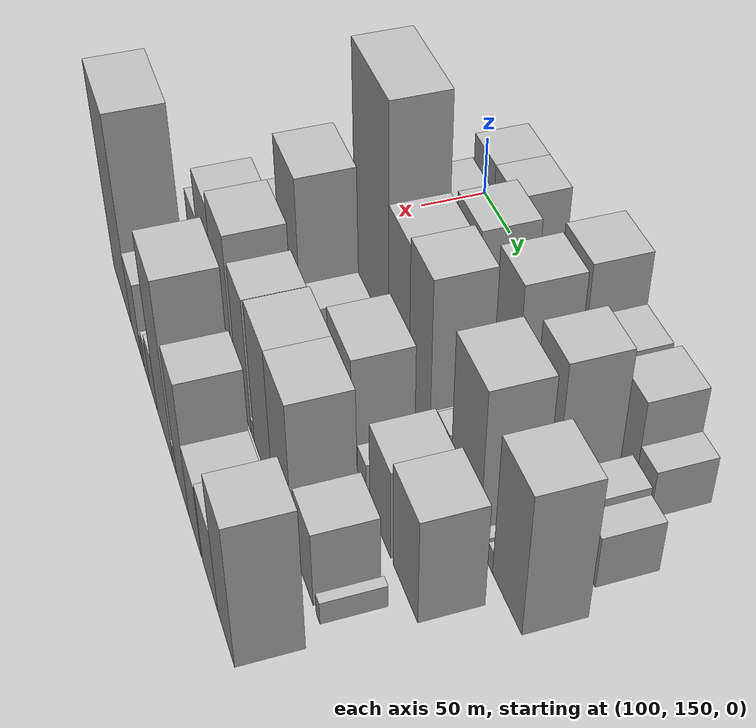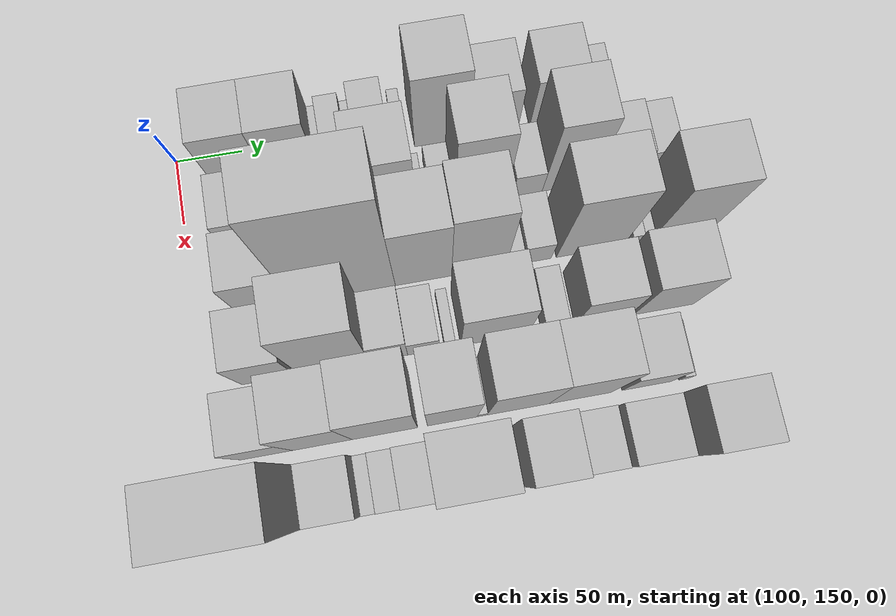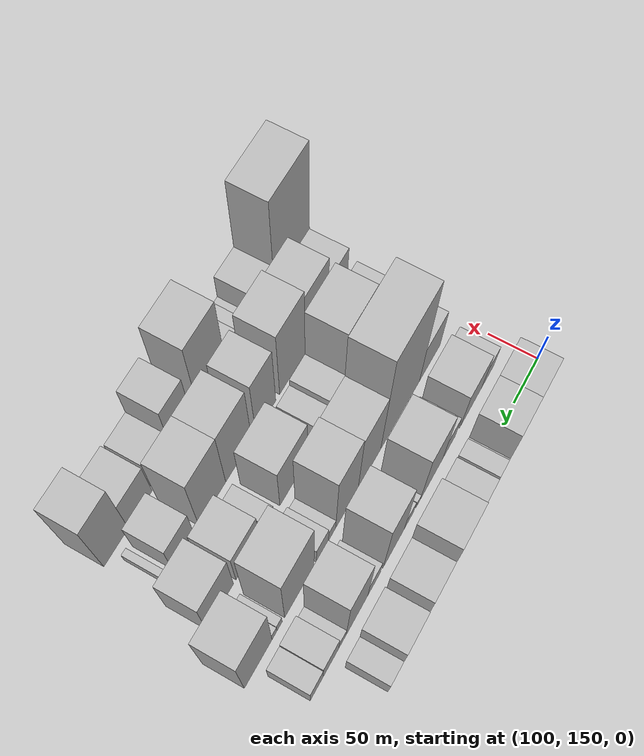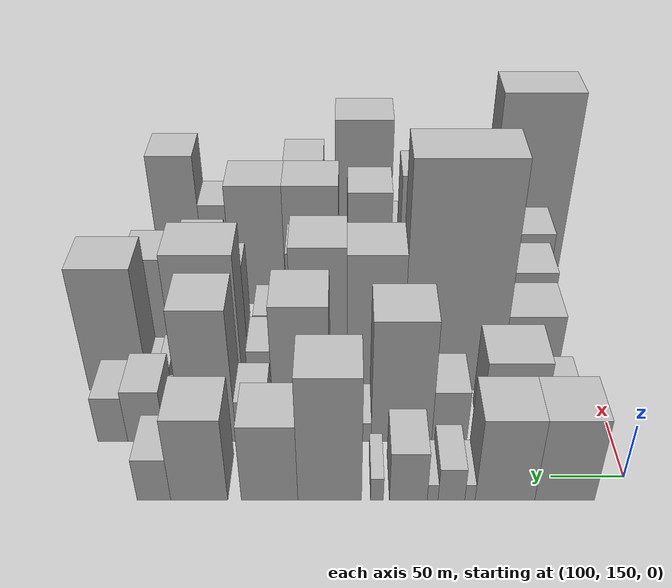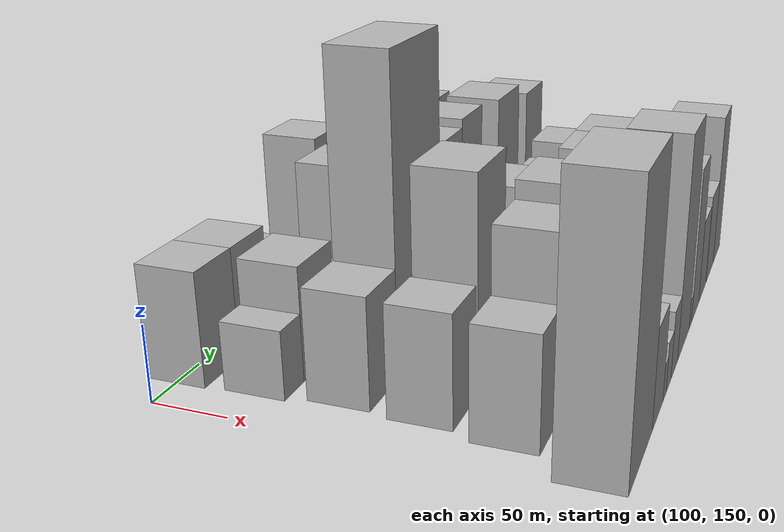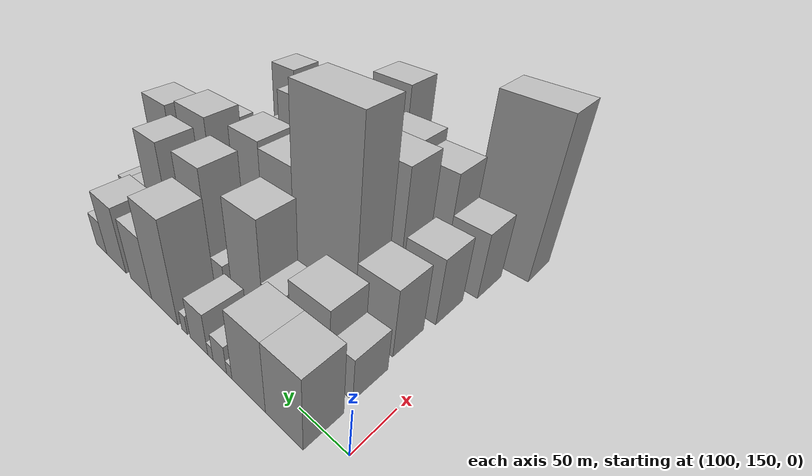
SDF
<sdf version="1.6">
 <world name="default">
  <model name="building_29">
   <static>1</static>
   <pose>100.0000 194.5269 0 0.000000 0.000000 0.000000</pose>
   <link name="link">
    <pose>0 0 37.50 0 0 0</pose>
    <collision name="collision"><geometry><box><size>40.0000 39.7964 75.0000</size></box></geometry></collision>
    <visual name="visual">
     <cast_shadows>0</cast_shadows>
     <geometry><box><size>40.0000 39.7964 75.0000</size></box></geometry>
     <material>
      <script>
       <uri>model://HANNAS_wall/materials/scripts</uri>
       <uri>model://HANNAS_wall/materials/textures</uri>
       <name>vrc/HANNAS_wall</name>
      </script>
     </material>
    </visual>
   </link>
  </model>
  <model name="building_30">
   <static>1</static>
   <pose>100.0000 234.2589 0 0.000000 0.000000 0.000000</pose>
   <link name="link">
    <pose>0 0 37.50 0 0 0</pose>
    <collision name="collision"><geometry><box><size>40.0000 39.6676 75.0000</size></box></geometry></collision>
    <visual name="visual">
     <cast_shadows>0</cast_shadows>
     <geometry><box><size>40.0000 39.6676 75.0000</size></box></geometry>
     <material>
      <script>
       <uri>model://HANNAS_wall/materials/scripts</uri>
       <uri>model://HANNAS_wall/materials/textures</uri>
       <name>vrc/HANNAS_wall</name>
      </script>
     </material>
    </visual>
   </link>
  </model>
  <model name="building_31">
   <static>1</static>
   <pose>100.0000 257.5255 0 0.000000 0.000000 0.000000</pose>
   <link name="link">
    <pose>0 0 7.50 0 0 0</pose>
    <collision name="collision"><geometry><box><size>40.0000 6.8656 15.0000</size></box></geometry></collision>
    <visual name="visual">
     <cast_shadows>0</cast_shadows>
     <geometry><box><size>40.0000 6.8656 15.0000</size></box></geometry>
     <material>
      <script>
       <uri>model://HANNAS_wall/materials/scripts</uri>
       <uri>model://HANNAS_wall/materials/textures</uri>
       <name>vrc/HANNAS_wall</name>
      </script>
     </material>
    </visual>
   </link>
  </model>
  <model name="building_32">
   <static>1</static>
   <pose>100.0000 269.8523 0 0.000000 0.000000 0.000000</pose>
   <link name="link">
    <pose>0 0 15.00 0 0 0</pose>
    <collision name="collision"><geometry><box><size>40.0000 17.7881 30.0000</size></box></geometry></collision>
    <visual name="visual">
     <cast_shadows>0</cast_shadows>
     <geometry><box><size>40.0000 17.7881 30.0000</size></box></geometry>
     <material>
      <script>
       <uri>model://HANNAS_wall/materials/scripts</uri>
       <uri>model://HANNAS_wall/materials/textures</uri>
       <name>vrc/HANNAS_wall</name>
      </script>
     </material>
    </visual>
   </link>
  </model>
  <model name="building_33">
   <static>1</static>
   <pose>100.0000 282.3357 0 0.000000 0.000000 0.000000</pose>
   <link name="link">
    <pose>0 0 7.50 0 0 0</pose>
    <collision name="collision"><geometry><box><size>40.0000 7.1787 15.0000</size></box></geometry></collision>
    <visual name="visual">
     <cast_shadows>0</cast_shadows>
     <geometry><box><size>40.0000 7.1787 15.0000</size></box></geometry>
     <material>
      <script>
       <uri>model://HANNAS_wall/materials/scripts</uri>
       <uri>model://HANNAS_wall/materials/textures</uri>
       <name>vrc/HANNAS_wall</name>
      </script>
     </material>
    </visual>
   </link>
  </model>
  <model name="building_34">
   <static>1</static>
   <pose>100.0000 298.5091 0 0.000000 0.000000 0.000000</pose>
   <link name="link">
    <pose>0 0 22.50 0 0 0</pose>
    <collision name="collision"><geometry><box><size>40.0000 25.1681 45.0000</size></box></geometry></collision>
    <visual name="visual">
     <cast_shadows>0</cast_shadows>
     <geometry><box><size>40.0000 25.1681 45.0000</size></box></geometry>
     <material>
      <script>
       <uri>model://HANNAS_wall/materials/scripts</uri>
       <uri>model://HANNAS_wall/materials/textures</uri>
       <name>vrc/HANNAS_wall</name>
      </script>
     </material>
    </visual>
   </link>
  </model>
  <model name="building_35">
   <static>1</static>
   <pose>100.0000 319.3938 0 0.000000 0.000000 0.000000</pose>
   <link name="link">
    <pose>0 0 10.50 0 0 0</pose>
    <collision name="collision"><geometry><box><size>40.0000 8.6014 21.0000</size></box></geometry></collision>
    <visual name="visual">
     <cast_shadows>0</cast_shadows>
     <geometry><box><size>40.0000 8.6014 21.0000</size></box></geometry>
     <material>
      <script>
       <uri>model://HANNAS_wall/materials/scripts</uri>
       <uri>model://HANNAS_wall/materials/textures</uri>
       <name>vrc/HANNAS_wall</name>
      </script>
     </material>
    </visual>
   </link>
  </model>
  <model name="building_36">
   <static>1</static>
   <pose>100.0000 350.8763 0 0.000000 0.000000 0.000000</pose>
   <link name="link">
    <pose>0 0 55.50 0 0 0</pose>
    <collision name="collision"><geometry><box><size>40.0000 42.3636 111.0000</size></box></geometry></collision>
    <visual name="visual">
     <cast_shadows>0</cast_shadows>
     <geometry><box><size>40.0000 42.3636 111.0000</size></box></geometry>
     <material>
      <script>
       <uri>model://HANNAS_wall/materials/scripts</uri>
       <uri>model://HANNAS_wall/materials/textures</uri>
       <name>vrc/HANNAS_wall</name>
      </script>
     </material>
    </visual>
   </link>
  </model>
  <model name="building_37">
   <static>1</static>
   <pose>100.0000 390.8622 0 0.000000 0.000000 0.000000</pose>
   <link name="link">
    <pose>0 0 34.50 0 0 0</pose>
    <collision name="collision"><geometry><box><size>40.0000 37.6083 69.0000</size></box></geometry></collision>
    <visual name="visual">
     <cast_shadows>0</cast_shadows>
     <geometry><box><size>40.0000 37.6083 69.0000</size></box></geometry>
     <material>
      <script>
       <uri>model://HANNAS_wall/materials/scripts</uri>
       <uri>model://HANNAS_wall/materials/textures</uri>
       <name>vrc/HANNAS_wall</name>
      </script>
     </material>
    </visual>
   </link>
  </model>
  <model name="building_38">
   <static>1</static>
   <pose>100.0000 437.6545 0 0.000000 0.000000 0.000000</pose>
   <link name="link">
    <pose>0 0 37.50 0 0 0</pose>
    <collision name="collision"><geometry><box><size>40.0000 37.9762 75.0000</size></box></geometry></collision>
    <visual name="visual">
     <cast_shadows>0</cast_shadows>
     <geometry><box><size>40.0000 37.9762 75.0000</size></box></geometry>
     <material>
      <script>
       <uri>model://HANNAS_wall/materials/scripts</uri>
       <uri>model://HANNAS_wall/materials/textures</uri>
       <name>vrc/HANNAS_wall</name>
      </script>
     </material>
    </visual>
   </link>
  </model>
  <model name="building_39">
   <static>1</static>
   <pose>100.0000 467.8266 0 0.000000 0.000000 0.000000</pose>
   <link name="link">
    <pose>0 0 19.50 0 0 0</pose>
    <collision name="collision"><geometry><box><size>40.0000 22.3680 39.0000</size></box></geometry></collision>
    <visual name="visual">
     <cast_shadows>0</cast_shadows>
     <geometry><box><size>40.0000 22.3680 39.0000</size></box></geometry>
     <material>
      <script>
       <uri>model://HANNAS_wall/materials/scripts</uri>
       <uri>model://HANNAS_wall/materials/textures</uri>
       <name>vrc/HANNAS_wall</name>
      </script>
     </material>
    </visual>
   </link>
  </model>
  <model name="building_77">
   <static>1</static>
   <pose>152.0000 189.0542 0 0.000000 0.000000 0.000000</pose>
   <link name="link">
    <pose>0 0 22.50 0 0 0</pose>
    <collision name="collision"><geometry><box><size>40.0000 24.2151 45.0000</size></box></geometry></collision>
    <visual name="visual">
     <cast_shadows>0</cast_shadows>
     <geometry><box><size>40.0000 24.2151 45.0000</size></box></geometry>
     <material>
      <script>
       <uri>model://HANNAS_wall/materials/scripts</uri>
       <uri>model://HANNAS_wall/materials/textures</uri>
       <name>vrc/HANNAS_wall</name>
      </script>
     </material>
    </visual>
   </link>
  </model>
  <model name="building_78">
   <static>1</static>
   <pose>152.0000 223.0713 0 0.000000 0.000000 0.000000</pose>
   <link name="link">
    <pose>0 0 37.50 0 0 0</pose>
    <collision name="collision"><geometry><box><size>40.0000 43.8192 75.0000</size></box></geometry></collision>
    <visual name="visual">
     <cast_shadows>0</cast_shadows>
     <geometry><box><size>40.0000 43.8192 75.0000</size></box></geometry>
     <material>
      <script>
       <uri>model://HANNAS_wall/materials/scripts</uri>
       <uri>model://HANNAS_wall/materials/textures</uri>
       <name>vrc/HANNAS_wall</name>
      </script>
     </material>
    </visual>
   </link>
  </model>
  <model name="building_79">
   <static>1</static>
   <pose>152.0000 266.4922 0 0.000000 0.000000 0.000000</pose>
   <link name="link">
    <pose>0 0 24.00 0 0 0</pose>
    <collision name="collision"><geometry><box><size>40.0000 25.0225 48.0000</size></box></geometry></collision>
    <visual name="visual">
     <cast_shadows>0</cast_shadows>
     <geometry><box><size>40.0000 25.0225 48.0000</size></box></geometry>
     <material>
      <script>
       <uri>model://HANNAS_wall/materials/scripts</uri>
       <uri>model://HANNAS_wall/materials/textures</uri>
       <name>vrc/HANNAS_wall</name>
      </script>
     </material>
    </visual>
   </link>
  </model>
  <model name="building_80">
   <static>1</static>
   <pose>152.0000 300.5590 0 0.000000 0.000000 0.000000</pose>
   <link name="link">
    <pose>0 0 55.50 0 0 0</pose>
    <collision name="collision"><geometry><box><size>40.0000 43.1111 111.0000</size></box></geometry></collision>
    <visual name="visual">
     <cast_shadows>0</cast_shadows>
     <geometry><box><size>40.0000 43.1111 111.0000</size></box></geometry>
     <material>
      <script>
       <uri>model://HANNAS_wall/materials/scripts</uri>
       <uri>model://HANNAS_wall/materials/textures</uri>
       <name>vrc/HANNAS_wall</name>
      </script>
     </material>
    </visual>
   </link>
  </model>
  <model name="building_81">
   <static>1</static>
   <pose>152.0000 325.9532 0 0.000000 0.000000 0.000000</pose>
   <link name="link">
    <pose>0 0 9.00 0 0 0</pose>
    <collision name="collision"><geometry><box><size>40.0000 7.6775 18.0000</size></box></geometry></collision>
    <visual name="visual">
     <cast_shadows>0</cast_shadows>
     <geometry><box><size>40.0000 7.6775 18.0000</size></box></geometry>
     <material>
      <script>
       <uri>model://HANNAS_wall/materials/scripts</uri>
       <uri>model://HANNAS_wall/materials/textures</uri>
       <name>vrc/HANNAS_wall</name>
      </script>
     </material>
    </visual>
   </link>
  </model>
  <model name="building_82">
   <static>1</static>
   <pose>152.0000 342.5700 0 0.000000 0.000000 0.000000</pose>
   <link name="link">
    <pose>0 0 15.00 0 0 0</pose>
    <collision name="collision"><geometry><box><size>40.0000 17.5560 30.0000</size></box></geometry></collision>
    <visual name="visual">
     <cast_shadows>0</cast_shadows>
     <geometry><box><size>40.0000 17.5560 30.0000</size></box></geometry>
     <material>
      <script>
       <uri>model://HANNAS_wall/materials/scripts</uri>
       <uri>model://HANNAS_wall/materials/textures</uri>
       <name>vrc/HANNAS_wall</name>
      </script>
     </material>
    </visual>
   </link>
  </model>
  <model name="building_83">
   <static>1</static>
   <pose>152.0000 370.8401 0 0.000000 0.000000 0.000000</pose>
   <link name="link">
    <pose>0 0 61.50 0 0 0</pose>
    <collision name="collision"><geometry><box><size>40.0000 38.9843 123.0000</size></box></geometry></collision>
    <visual name="visual">
     <cast_shadows>0</cast_shadows>
     <geometry><box><size>40.0000 38.9843 123.0000</size></box></geometry>
     <material>
      <script>
       <uri>model://HANNAS_wall/materials/scripts</uri>
       <uri>model://HANNAS_wall/materials/textures</uri>
       <name>vrc/HANNAS_wall</name>
      </script>
     </material>
    </visual>
   </link>
  </model>
  <model name="building_84">
   <static>1</static>
   <pose>152.0000 406.5475 0 0.000000 0.000000 0.000000</pose>
   <link name="link">
    <pose>0 0 19.50 0 0 0</pose>
    <collision name="collision"><geometry><box><size>40.0000 22.4305 39.0000</size></box></geometry></collision>
    <visual name="visual">
     <cast_shadows>0</cast_shadows>
     <geometry><box><size>40.0000 22.4305 39.0000</size></box></geometry>
     <material>
      <script>
       <uri>model://HANNAS_wall/materials/scripts</uri>
       <uri>model://HANNAS_wall/materials/textures</uri>
       <name>vrc/HANNAS_wall</name>
      </script>
     </material>
    </visual>
   </link>
  </model>
  <model name="building_85">
   <static>1</static>
   <pose>152.0000 436.7670 0 0.000000 0.000000 0.000000</pose>
   <link name="link">
    <pose>0 0 60.00 0 0 0</pose>
    <collision name="collision"><geometry><box><size>40.0000 38.0085 120.0000</size></box></geometry></collision>
    <visual name="visual">
     <cast_shadows>0</cast_shadows>
     <geometry><box><size>40.0000 38.0085 120.0000</size></box></geometry>
     <material>
      <script>
       <uri>model://HANNAS_wall/materials/scripts</uri>
       <uri>model://HANNAS_wall/materials/textures</uri>
       <name>vrc/HANNAS_wall</name>
      </script>
     </material>
    </visual>
   </link>
  </model>
  <model name="building_86">
   <static>1</static>
   <pose>152.0000 462.1711 0 0.000000 0.000000 0.000000</pose>
   <link name="link">
    <pose>0 0 13.50 0 0 0</pose>
    <collision name="collision"><geometry><box><size>40.0000 12.7997 27.0000</size></box></geometry></collision>
    <visual name="visual">
     <cast_shadows>0</cast_shadows>
     <geometry><box><size>40.0000 12.7997 27.0000</size></box></geometry>
     <material>
      <script>
       <uri>model://HANNAS_wall/materials/scripts</uri>
       <uri>model://HANNAS_wall/materials/textures</uri>
       <name>vrc/HANNAS_wall</name>
      </script>
     </material>
    </visual>
   </link>
  </model>
  <model name="building_87">
   <static>1</static>
   <pose>152.0000 481.8866 0 0.000000 0.000000 0.000000</pose>
   <link name="link">
    <pose>0 0 24.00 0 0 0</pose>
    <collision name="collision"><geometry><box><size>40.0000 26.6314 48.0000</size></box></geometry></collision>
    <visual name="visual">
     <cast_shadows>0</cast_shadows>
     <geometry><box><size>40.0000 26.6314 48.0000</size></box></geometry>
     <material>
      <script>
       <uri>model://HANNAS_wall/materials/scripts</uri>
       <uri>model://HANNAS_wall/materials/textures</uri>
       <name>vrc/HANNAS_wall</name>
      </script>
     </material>
    </visual>
   </link>
  </model>
  <model name="building_88">
   <static>1</static>
   <pose>152.0000 505.8648 0 0.000000 0.000000 0.000000</pose>
   <link name="link">
    <pose>0 0 21.00 0 0 0</pose>
    <collision name="collision"><geometry><box><size>40.0000 21.3251 42.0000</size></box></geometry></collision>
    <visual name="visual">
     <cast_shadows>0</cast_shadows>
     <geometry><box><size>40.0000 21.3251 42.0000</size></box></geometry>
     <material>
      <script>
       <uri>model://HANNAS_wall/materials/scripts</uri>
       <uri>model://HANNAS_wall/materials/textures</uri>
       <name>vrc/HANNAS_wall</name>
      </script>
     </material>
    </visual>
   </link>
  </model>
  <model name="building_135">
   <static>1</static>
   <pose>204.0000 202.5389 0 0.000000 0.000000 0.000000</pose>
   <link name="link">
    <pose>0 0 36.00 0 0 0</pose>
    <collision name="collision"><geometry><box><size>40.0000 41.3327 72.0000</size></box></geometry></collision>
    <visual name="visual">
     <cast_shadows>0</cast_shadows>
     <geometry><box><size>40.0000 41.3327 72.0000</size></box></geometry>
     <material>
      <script>
       <uri>model://HANNAS_wall/materials/scripts</uri>
       <uri>model://HANNAS_wall/materials/textures</uri>
       <name>vrc/HANNAS_wall</name>
      </script>
     </material>
    </visual>
   </link>
  </model>
  <model name="building_136">
   <static>1</static>
   <pose>204.0000 260.3291 0 0.000000 0.000000 0.000000</pose>
   <link name="link">
    <pose>0 0 100.50 0 0 0</pose>
    <collision name="collision"><geometry><box><size>40.0000 74.2478 201.0000</size></box></geometry></collision>
    <visual name="visual">
     <cast_shadows>0</cast_shadows>
     <geometry><box><size>40.0000 74.2478 201.0000</size></box></geometry>
     <material>
      <script>
       <uri>model://HANNAS_wall/materials/scripts</uri>
       <uri>model://HANNAS_wall/materials/textures</uri>
       <name>vrc/HANNAS_wall</name>
      </script>
     </material>
    </visual>
   </link>
  </model>
  <model name="building_137">
   <static>1</static>
   <pose>204.0000 318.3373 0 0.000000 0.000000 0.000000</pose>
   <link name="link">
    <pose>0 0 63.00 0 0 0</pose>
    <collision name="collision"><geometry><box><size>40.0000 41.7686 126.0000</size></box></geometry></collision>
    <visual name="visual">
     <cast_shadows>0</cast_shadows>
     <geometry><box><size>40.0000 41.7686 126.0000</size></box></geometry>
     <material>
      <script>
       <uri>model://HANNAS_wall/materials/scripts</uri>
       <uri>model://HANNAS_wall/materials/textures</uri>
       <name>vrc/HANNAS_wall</name>
      </script>
     </material>
    </visual>
   </link>
  </model>
  <model name="building_138">
   <static>1</static>
   <pose>204.0000 359.4949 0 0.000000 0.000000 0.000000</pose>
   <link name="link">
    <pose>0 0 66.00 0 0 0</pose>
    <collision name="collision"><geometry><box><size>40.0000 40.5465 132.0000</size></box></geometry></collision>
    <visual name="visual">
     <cast_shadows>0</cast_shadows>
     <geometry><box><size>40.0000 40.5465 132.0000</size></box></geometry>
     <material>
      <script>
       <uri>model://HANNAS_wall/materials/scripts</uri>
       <uri>model://HANNAS_wall/materials/textures</uri>
       <name>vrc/HANNAS_wall</name>
      </script>
     </material>
    </visual>
   </link>
  </model>
  <model name="building_139">
   <static>1</static>
   <pose>204.0000 386.1243 0 0.000000 0.000000 0.000000</pose>
   <link name="link">
    <pose>0 0 13.50 0 0 0</pose>
    <collision name="collision"><geometry><box><size>40.0000 12.7125 27.0000</size></box></geometry></collision>
    <visual name="visual">
     <cast_shadows>0</cast_shadows>
     <geometry><box><size>40.0000 12.7125 27.0000</size></box></geometry>
     <material>
      <script>
       <uri>model://HANNAS_wall/materials/scripts</uri>
       <uri>model://HANNAS_wall/materials/textures</uri>
       <name>vrc/HANNAS_wall</name>
      </script>
     </material>
    </visual>
   </link>
  </model>
  <model name="building_140">
   <static>1</static>
   <pose>204.0000 403.0860 0 0.000000 0.000000 0.000000</pose>
   <link name="link">
    <pose>0 0 19.50 0 0 0</pose>
    <collision name="collision"><geometry><box><size>40.0000 21.2110 39.0000</size></box></geometry></collision>
    <visual name="visual">
     <cast_shadows>0</cast_shadows>
     <geometry><box><size>40.0000 21.2110 39.0000</size></box></geometry>
     <material>
      <script>
       <uri>model://HANNAS_wall/materials/scripts</uri>
       <uri>model://HANNAS_wall/materials/textures</uri>
       <name>vrc/HANNAS_wall</name>
      </script>
     </material>
    </visual>
   </link>
  </model>
  <model name="building_141">
   <static>1</static>
   <pose>204.0000 442.8209 0 0.000000 0.000000 0.000000</pose>
   <link name="link">
    <pose>0 0 63.00 0 0 0</pose>
    <collision name="collision"><geometry><box><size>40.0000 50.2588 126.0000</size></box></geometry></collision>
    <visual name="visual">
     <cast_shadows>0</cast_shadows>
     <geometry><box><size>40.0000 50.2588 126.0000</size></box></geometry>
     <material>
      <script>
       <uri>model://HANNAS_wall/materials/scripts</uri>
       <uri>model://HANNAS_wall/materials/textures</uri>
       <name>vrc/HANNAS_wall</name>
      </script>
     </material>
    </visual>
   </link>
  </model>
  <model name="building_142">
   <static>1</static>
   <pose>204.0000 476.3809 0 0.000000 0.000000 0.000000</pose>
   <link name="link">
    <pose>0 0 10.50 0 0 0</pose>
    <collision name="collision"><geometry><box><size>40.0000 8.8613 21.0000</size></box></geometry></collision>
    <visual name="visual">
     <cast_shadows>0</cast_shadows>
     <geometry><box><size>40.0000 8.8613 21.0000</size></box></geometry>
     <material>
      <script>
       <uri>model://HANNAS_wall/materials/scripts</uri>
       <uri>model://HANNAS_wall/materials/textures</uri>
       <name>vrc/HANNAS_wall</name>
      </script>
     </material>
    </visual>
   </link>
  </model>
  <model name="building_143">
   <static>1</static>
   <pose>204.0000 484.9530 0 0.000000 0.000000 0.000000</pose>
   <link name="link">
    <pose>0 0 9.00 0 0 0</pose>
    <collision name="collision"><geometry><box><size>40.0000 8.2828 18.0000</size></box></geometry></collision>
    <visual name="visual">
     <cast_shadows>0</cast_shadows>
     <geometry><box><size>40.0000 8.2828 18.0000</size></box></geometry>
     <material>
      <script>
       <uri>model://HANNAS_wall/materials/scripts</uri>
       <uri>model://HANNAS_wall/materials/textures</uri>
       <name>vrc/HANNAS_wall</name>
      </script>
     </material>
    </visual>
   </link>
  </model>
  <model name="building_144">
   <static>1</static>
   <pose>204.0000 511.7699 0 0.000000 0.000000 0.000000</pose>
   <link name="link">
    <pose>0 0 57.00 0 0 0</pose>
    <collision name="collision"><geometry><box><size>40.0000 45.3511 114.0000</size></box></geometry></collision>
    <visual name="visual">
     <cast_shadows>0</cast_shadows>
     <geometry><box><size>40.0000 45.3511 114.0000</size></box></geometry>
     <material>
      <script>
       <uri>model://HANNAS_wall/materials/scripts</uri>
       <uri>model://HANNAS_wall/materials/textures</uri>
       <name>vrc/HANNAS_wall</name>
      </script>
     </material>
    </visual>
   </link>
  </model>
  <model name="building_189">
   <static>1</static>
   <pose>256.0000 197.2105 0 0.000000 0.000000 0.000000</pose>
   <link name="link">
    <pose>0 0 36.00 0 0 0</pose>
    <collision name="collision"><geometry><box><size>40.0000 38.6667 72.0000</size></box></geometry></collision>
    <visual name="visual">
     <cast_shadows>0</cast_shadows>
     <geometry><box><size>40.0000 38.6667 72.0000</size></box></geometry>
     <material>
      <script>
       <uri>model://HANNAS_wall/materials/scripts</uri>
       <uri>model://HANNAS_wall/materials/textures</uri>
       <name>vrc/HANNAS_wall</name>
      </script>
     </material>
    </visual>
   </link>
  </model>
  <model name="building_190">
   <static>1</static>
   <pose>256.0000 244.8612 0 0.000000 0.000000 0.000000</pose>
   <link name="link">
    <pose>0 0 69.00 0 0 0</pose>
    <collision name="collision"><geometry><box><size>40.0000 50.6346 138.0000</size></box></geometry></collision>
    <visual name="visual">
     <cast_shadows>0</cast_shadows>
     <geometry><box><size>40.0000 50.6346 138.0000</size></box></geometry>
     <material>
      <script>
       <uri>model://HANNAS_wall/materials/scripts</uri>
       <uri>model://HANNAS_wall/materials/textures</uri>
       <name>vrc/HANNAS_wall</name>
      </script>
     </material>
    </visual>
   </link>
  </model>
  <model name="building_191">
   <static>1</static>
   <pose>256.0000 283.9771 0 0.000000 0.000000 0.000000</pose>
   <link name="link">
    <pose>0 0 27.00 0 0 0</pose>
    <collision name="collision"><geometry><box><size>40.0000 27.5973 54.0000</size></box></geometry></collision>
    <visual name="visual">
     <cast_shadows>0</cast_shadows>
     <geometry><box><size>40.0000 27.5973 54.0000</size></box></geometry>
     <material>
      <script>
       <uri>model://HANNAS_wall/materials/scripts</uri>
       <uri>model://HANNAS_wall/materials/textures</uri>
       <name>vrc/HANNAS_wall</name>
      </script>
     </material>
    </visual>
   </link>
  </model>
  <model name="building_192">
   <static>1</static>
   <pose>256.0000 309.2094 0 0.000000 0.000000 0.000000</pose>
   <link name="link">
    <pose>0 0 21.00 0 0 0</pose>
    <collision name="collision"><geometry><box><size>40.0000 22.8674 42.0000</size></box></geometry></collision>
    <visual name="visual">
     <cast_shadows>0</cast_shadows>
     <geometry><box><size>40.0000 22.8674 42.0000</size></box></geometry>
     <material>
      <script>
       <uri>model://HANNAS_wall/materials/scripts</uri>
       <uri>model://HANNAS_wall/materials/textures</uri>
       <name>vrc/HANNAS_wall</name>
      </script>
     </material>
    </visual>
   </link>
  </model>
  <model name="building_193">
   <static>1</static>
   <pose>256.0000 328.5316 0 0.000000 0.000000 0.000000</pose>
   <link name="link">
    <pose>0 0 9.00 0 0 0</pose>
    <collision name="collision"><geometry><box><size>40.0000 7.7770 18.0000</size></box></geometry></collision>
    <visual name="visual">
     <cast_shadows>0</cast_shadows>
     <geometry><box><size>40.0000 7.7770 18.0000</size></box></geometry>
     <material>
      <script>
       <uri>model://HANNAS_wall/materials/scripts</uri>
       <uri>model://HANNAS_wall/materials/textures</uri>
       <name>vrc/HANNAS_wall</name>
      </script>
     </material>
    </visual>
   </link>
  </model>
  <model name="building_194">
   <static>1</static>
   <pose>256.0000 361.0884 0 0.000000 0.000000 0.000000</pose>
   <link name="link">
    <pose>0 0 45.00 0 0 0</pose>
    <collision name="collision"><geometry><box><size>40.0000 49.3365 90.0000</size></box></geometry></collision>
    <visual name="visual">
     <cast_shadows>0</cast_shadows>
     <geometry><box><size>40.0000 49.3365 90.0000</size></box></geometry>
     <material>
      <script>
       <uri>model://HANNAS_wall/materials/scripts</uri>
       <uri>model://HANNAS_wall/materials/textures</uri>
       <name>vrc/HANNAS_wall</name>
      </script>
     </material>
    </visual>
   </link>
  </model>
  <model name="building_195">
   <static>1</static>
   <pose>256.0000 404.5489 0 0.000000 0.000000 0.000000</pose>
   <link name="link">
    <pose>0 0 15.00 0 0 0</pose>
    <collision name="collision"><geometry><box><size>40.0000 17.5847 30.0000</size></box></geometry></collision>
    <visual name="visual">
     <cast_shadows>0</cast_shadows>
     <geometry><box><size>40.0000 17.5847 30.0000</size></box></geometry>
     <material>
      <script>
       <uri>model://HANNAS_wall/materials/scripts</uri>
       <uri>model://HANNAS_wall/materials/textures</uri>
       <name>vrc/HANNAS_wall</name>
      </script>
     </material>
    </visual>
   </link>
  </model>
  <model name="building_196">
   <static>1</static>
   <pose>256.0000 440.3724 0 0.000000 0.000000 0.000000</pose>
   <link name="link">
    <pose>0 0 36.00 0 0 0</pose>
    <collision name="collision"><geometry><box><size>40.0000 40.0622 72.0000</size></box></geometry></collision>
    <visual name="visual">
     <cast_shadows>0</cast_shadows>
     <geometry><box><size>40.0000 40.0622 72.0000</size></box></geometry>
     <material>
      <script>
       <uri>model://HANNAS_wall/materials/scripts</uri>
       <uri>model://HANNAS_wall/materials/textures</uri>
       <name>vrc/HANNAS_wall</name>
      </script>
     </material>
    </visual>
   </link>
  </model>
  <model name="building_197">
   <static>1</static>
   <pose>256.0000 486.5940 0 0.000000 0.000000 0.000000</pose>
   <link name="link">
    <pose>0 0 42.00 0 0 0</pose>
    <collision name="collision"><geometry><box><size>40.0000 44.3811 84.0000</size></box></geometry></collision>
    <visual name="visual">
     <cast_shadows>0</cast_shadows>
     <geometry><box><size>40.0000 44.3811 84.0000</size></box></geometry>
     <material>
      <script>
       <uri>model://HANNAS_wall/materials/scripts</uri>
       <uri>model://HANNAS_wall/materials/textures</uri>
       <name>vrc/HANNAS_wall</name>
      </script>
     </material>
    </visual>
   </link>
  </model>
  <model name="building_239">
   <static>1</static>
   <pose>308.0000 188.6569 0 0.000000 0.000000 0.000000</pose>
   <link name="link">
    <pose>0 0 36.00 0 0 0</pose>
    <collision name="collision"><geometry><box><size>40.0000 36.8795 72.0000</size></box></geometry></collision>
    <visual name="visual">
     <cast_shadows>0</cast_shadows>
     <geometry><box><size>40.0000 36.8795 72.0000</size></box></geometry>
     <material>
      <script>
       <uri>model://HANNAS_wall/materials/scripts</uri>
       <uri>model://HANNAS_wall/materials/textures</uri>
       <name>vrc/HANNAS_wall</name>
      </script>
     </material>
    </visual>
   </link>
  </model>
  <model name="building_240">
   <static>1</static>
   <pose>308.0000 228.2133 0 0.000000 0.000000 0.000000</pose>
   <link name="link">
    <pose>0 0 57.00 0 0 0</pose>
    <collision name="collision"><geometry><box><size>40.0000 42.2333 114.0000</size></box></geometry></collision>
    <visual name="visual">
     <cast_shadows>0</cast_shadows>
     <geometry><box><size>40.0000 42.2333 114.0000</size></box></geometry>
     <material>
      <script>
       <uri>model://HANNAS_wall/materials/scripts</uri>
       <uri>model://HANNAS_wall/materials/textures</uri>
       <name>vrc/HANNAS_wall</name>
      </script>
     </material>
    </visual>
   </link>
  </model>
  <model name="building_241">
   <static>1</static>
   <pose>308.0000 272.6473 0 0.000000 0.000000 0.000000</pose>
   <link name="link">
    <pose>0 0 63.00 0 0 0</pose>
    <collision name="collision"><geometry><box><size>40.0000 46.6345 126.0000</size></box></geometry></collision>
    <visual name="visual">
     <cast_shadows>0</cast_shadows>
     <geometry><box><size>40.0000 46.6345 126.0000</size></box></geometry>
     <material>
      <script>
       <uri>model://HANNAS_wall/materials/scripts</uri>
       <uri>model://HANNAS_wall/materials/textures</uri>
       <name>vrc/HANNAS_wall</name>
      </script>
     </material>
    </visual>
   </link>
  </model>
  <model name="building_242">
   <static>1</static>
   <pose>308.0000 320.7483 0 0.000000 0.000000 0.000000</pose>
   <link name="link">
    <pose>0 0 55.50 0 0 0</pose>
    <collision name="collision"><geometry><box><size>40.0000 35.5676 111.0000</size></box></geometry></collision>
    <visual name="visual">
     <cast_shadows>0</cast_shadows>
     <geometry><box><size>40.0000 35.5676 111.0000</size></box></geometry>
     <material>
      <script>
       <uri>model://HANNAS_wall/materials/scripts</uri>
       <uri>model://HANNAS_wall/materials/textures</uri>
       <name>vrc/HANNAS_wall</name>
      </script>
     </material>
    </visual>
   </link>
  </model>
  <model name="building_243">
   <static>1</static>
   <pose>308.0000 342.1087 0 0.000000 0.000000 0.000000</pose>
   <link name="link">
    <pose>0 0 7.50 0 0 0</pose>
    <collision name="collision"><geometry><box><size>40.0000 7.1532 15.0000</size></box></geometry></collision>
    <visual name="visual">
     <cast_shadows>0</cast_shadows>
     <geometry><box><size>40.0000 7.1532 15.0000</size></box></geometry>
     <material>
      <script>
       <uri>model://HANNAS_wall/materials/scripts</uri>
       <uri>model://HANNAS_wall/materials/textures</uri>
       <name>vrc/HANNAS_wall</name>
      </script>
     </material>
    </visual>
   </link>
  </model>
  <model name="building_244">
   <static>1</static>
   <pose>308.0000 368.1039 0 0.000000 0.000000 0.000000</pose>
   <link name="link">
    <pose>0 0 58.50 0 0 0</pose>
    <collision name="collision"><geometry><box><size>40.0000 44.8372 117.0000</size></box></geometry></collision>
    <visual name="visual">
     <cast_shadows>0</cast_shadows>
     <geometry><box><size>40.0000 44.8372 117.0000</size></box></geometry>
     <material>
      <script>
       <uri>model://HANNAS_wall/materials/scripts</uri>
       <uri>model://HANNAS_wall/materials/textures</uri>
       <name>vrc/HANNAS_wall</name>
      </script>
     </material>
    </visual>
   </link>
  </model>
  <model name="building_245">
   <static>1</static>
   <pose>308.0000 413.0731 0 0.000000 0.000000 0.000000</pose>
   <link name="link">
    <pose>0 0 58.50 0 0 0</pose>
    <collision name="collision"><geometry><box><size>40.0000 45.1012 117.0000</size></box></geometry></collision>
    <visual name="visual">
     <cast_shadows>0</cast_shadows>
     <geometry><box><size>40.0000 45.1012 117.0000</size></box></geometry>
     <material>
      <script>
       <uri>model://HANNAS_wall/materials/scripts</uri>
       <uri>model://HANNAS_wall/materials/textures</uri>
       <name>vrc/HANNAS_wall</name>
      </script>
     </material>
    </visual>
   </link>
  </model>
  <model name="building_246">
   <static>1</static>
   <pose>308.0000 461.4597 0 0.000000 0.000000 0.000000</pose>
   <link name="link">
    <pose>0 0 30.00 0 0 0</pose>
    <collision name="collision"><geometry><box><size>40.0000 35.6721 60.0000</size></box></geometry></collision>
    <visual name="visual">
     <cast_shadows>0</cast_shadows>
     <geometry><box><size>40.0000 35.6721 60.0000</size></box></geometry>
     <material>
      <script>
       <uri>model://HANNAS_wall/materials/scripts</uri>
       <uri>model://HANNAS_wall/materials/textures</uri>
       <name>vrc/HANNAS_wall</name>
      </script>
     </material>
    </visual>
   </link>
  </model>
  <model name="building_247">
   <static>1</static>
   <pose>308.0000 489.0661 0 0.000000 0.000000 0.000000</pose>
   <link name="link">
    <pose>0 0 9.00 0 0 0</pose>
    <collision name="collision"><geometry><box><size>40.0000 7.5407 18.0000</size></box></geometry></collision>
    <visual name="visual">
     <cast_shadows>0</cast_shadows>
     <geometry><box><size>40.0000 7.5407 18.0000</size></box></geometry>
     <material>
      <script>
       <uri>model://HANNAS_wall/materials/scripts</uri>
       <uri>model://HANNAS_wall/materials/textures</uri>
       <name>vrc/HANNAS_wall</name>
      </script>
     </material>
    </visual>
   </link>
  </model>
  <model name="building_289">
   <static>1</static>
   <pose>360.0000 181.8647 0 0.000000 0.000000 0.000000</pose>
   <link name="link">
    <pose>0 0 85.50 0 0 0</pose>
    <collision name="collision"><geometry><box><size>40.0000 65.5498 171.0000</size></box></geometry></collision>
    <visual name="visual">
     <cast_shadows>0</cast_shadows>
     <geometry><box><size>40.0000 65.5498 171.0000</size></box></geometry>
     <material>
      <script>
       <uri>model://HANNAS_wall/materials/scripts</uri>
       <uri>model://HANNAS_wall/materials/textures</uri>
       <name>vrc/HANNAS_wall</name>
      </script>
     </material>
    </visual>
   </link>
  </model>
  <model name="building_290">
   <static>1</static>
   <pose>360.0000 231.7349 0 0.000000 0.000000 0.000000</pose>
   <link name="link">
    <pose>0 0 31.50 0 0 0</pose>
    <collision name="collision"><geometry><box><size>40.0000 34.1907 63.0000</size></box></geometry></collision>
    <visual name="visual">
     <cast_shadows>0</cast_shadows>
     <geometry><box><size>40.0000 34.1907 63.0000</size></box></geometry>
     <material>
      <script>
       <uri>model://HANNAS_wall/materials/scripts</uri>
       <uri>model://HANNAS_wall/materials/textures</uri>
       <name>vrc/HANNAS_wall</name>
      </script>
     </material>
    </visual>
   </link>
  </model>
  <model name="building_291">
   <static>1</static>
   <pose>360.0000 254.0948 0 0.000000 0.000000 0.000000</pose>
   <link name="link">
    <pose>0 0 12.00 0 0 0</pose>
    <collision name="collision"><geometry><box><size>40.0000 10.5290 24.0000</size></box></geometry></collision>
    <visual name="visual">
     <cast_shadows>0</cast_shadows>
     <geometry><box><size>40.0000 10.5290 24.0000</size></box></geometry>
     <material>
      <script>
       <uri>model://HANNAS_wall/materials/scripts</uri>
       <uri>model://HANNAS_wall/materials/textures</uri>
       <name>vrc/HANNAS_wall</name>
      </script>
     </material>
    </visual>
   </link>
  </model>
  <model name="building_292">
   <static>1</static>
   <pose>360.0000 267.9495 0 0.000000 0.000000 0.000000</pose>
   <link name="link">
    <pose>0 0 16.50 0 0 0</pose>
    <collision name="collision"><geometry><box><size>40.0000 17.1804 33.0000</size></box></geometry></collision>
    <visual name="visual">
     <cast_shadows>0</cast_shadows>
     <geometry><box><size>40.0000 17.1804 33.0000</size></box></geometry>
     <material>
      <script>
       <uri>model://HANNAS_wall/materials/scripts</uri>
       <uri>model://HANNAS_wall/materials/textures</uri>
       <name>vrc/HANNAS_wall</name>
      </script>
     </material>
    </visual>
   </link>
  </model>
  <model name="building_293">
   <static>1</static>
   <pose>360.0000 288.6792 0 0.000000 0.000000 0.000000</pose>
   <link name="link">
    <pose>0 0 22.50 0 0 0</pose>
    <collision name="collision"><geometry><box><size>40.0000 24.2791 45.0000</size></box></geometry></collision>
    <visual name="visual">
     <cast_shadows>0</cast_shadows>
     <geometry><box><size>40.0000 24.2791 45.0000</size></box></geometry>
     <material>
      <script>
       <uri>model://HANNAS_wall/materials/scripts</uri>
       <uri>model://HANNAS_wall/materials/textures</uri>
       <name>vrc/HANNAS_wall</name>
      </script>
     </material>
    </visual>
   </link>
  </model>
  <model name="building_294">
   <static>1</static>
   <pose>360.0000 324.6608 0 0.000000 0.000000 0.000000</pose>
   <link name="link">
    <pose>0 0 73.50 0 0 0</pose>
    <collision name="collision"><geometry><box><size>40.0000 47.6840 147.0000</size></box></geometry></collision>
    <visual name="visual">
     <cast_shadows>0</cast_shadows>
     <geometry><box><size>40.0000 47.6840 147.0000</size></box></geometry>
     <material>
      <script>
       <uri>model://HANNAS_wall/materials/scripts</uri>
       <uri>model://HANNAS_wall/materials/textures</uri>
       <name>vrc/HANNAS_wall</name>
      </script>
     </material>
    </visual>
   </link>
  </model>
  <model name="building_295">
   <static>1</static>
   <pose>360.0000 353.5257 0 0.000000 0.000000 0.000000</pose>
   <link name="link">
    <pose>0 0 10.50 0 0 0</pose>
    <collision name="collision"><geometry><box><size>40.0000 10.0459 21.0000</size></box></geometry></collision>
    <visual name="visual">
     <cast_shadows>0</cast_shadows>
     <geometry><box><size>40.0000 10.0459 21.0000</size></box></geometry>
     <material>
      <script>
       <uri>model://HANNAS_wall/materials/scripts</uri>
       <uri>model://HANNAS_wall/materials/textures</uri>
       <name>vrc/HANNAS_wall</name>
      </script>
     </material>
    </visual>
   </link>
  </model>
  <model name="building_296">
   <static>1</static>
   <pose>360.0000 375.4853 0 0.000000 0.000000 0.000000</pose>
   <link name="link">
    <pose>0 0 54.00 0 0 0</pose>
    <collision name="collision"><geometry><box><size>40.0000 33.8733 108.0000</size></box></geometry></collision>
    <visual name="visual">
     <cast_shadows>0</cast_shadows>
     <geometry><box><size>40.0000 33.8733 108.0000</size></box></geometry>
     <material>
      <script>
       <uri>model://HANNAS_wall/materials/scripts</uri>
       <uri>model://HANNAS_wall/materials/textures</uri>
       <name>vrc/HANNAS_wall</name>
      </script>
     </material>
    </visual>
   </link>
  </model>
  <model name="building_297">
   <static>1</static>
   <pose>360.0000 409.1896 0 0.000000 0.000000 0.000000</pose>
   <link name="link">
    <pose>0 0 30.00 0 0 0</pose>
    <collision name="collision"><geometry><box><size>40.0000 33.5354 60.0000</size></box></geometry></collision>
    <visual name="visual">
     <cast_shadows>0</cast_shadows>
     <geometry><box><size>40.0000 33.5354 60.0000</size></box></geometry>
     <material>
      <script>
       <uri>model://HANNAS_wall/materials/scripts</uri>
       <uri>model://HANNAS_wall/materials/textures</uri>
       <name>vrc/HANNAS_wall</name>
      </script>
     </material>
    </visual>
   </link>
  </model>
  <model name="building_298">
   <static>1</static>
   <pose>360.0000 448.0773 0 0.000000 0.000000 0.000000</pose>
   <link name="link">
    <pose>0 0 33.00 0 0 0</pose>
    <collision name="collision"><geometry><box><size>40.0000 38.2400 66.0000</size></box></geometry></collision>
    <visual name="visual">
     <cast_shadows>0</cast_shadows>
     <geometry><box><size>40.0000 38.2400 66.0000</size></box></geometry>
     <material>
      <script>
       <uri>model://HANNAS_wall/materials/scripts</uri>
       <uri>model://HANNAS_wall/materials/textures</uri>
       <name>vrc/HANNAS_wall</name>
      </script>
     </material>
    </visual>
   </link>
  </model>
  <model name="building_299">
   <static>1</static>
   <pose>360.0000 486.6608 0 0.000000 0.000000 0.000000</pose>
   <link name="link">
    <pose>0 0 57.00 0 0 0</pose>
    <collision name="collision"><geometry><box><size>40.0000 38.9271 114.0000</size></box></geometry></collision>
    <visual name="visual">
     <cast_shadows>0</cast_shadows>
     <geometry><box><size>40.0000 38.9271 114.0000</size></box></geometry>
     <material>
      <script>
       <uri>model://HANNAS_wall/materials/scripts</uri>
       <uri>model://HANNAS_wall/materials/textures</uri>
       <name>vrc/HANNAS_wall</name>
      </script>
     </material>
    </visual>
   </link>
  </model>
 </world>
</sdf>
